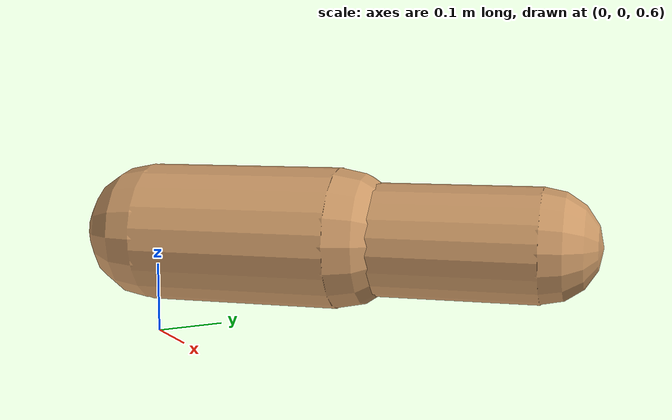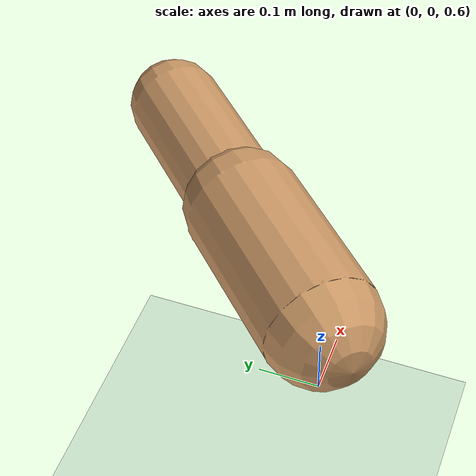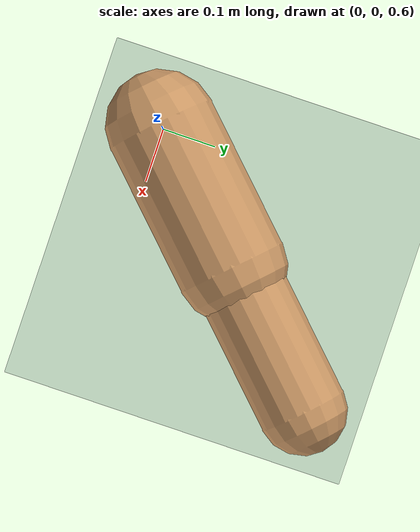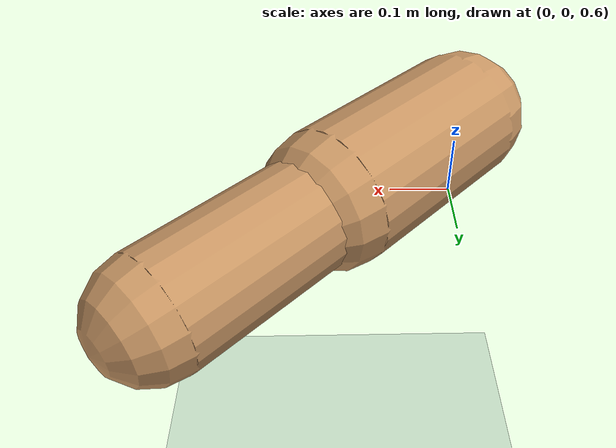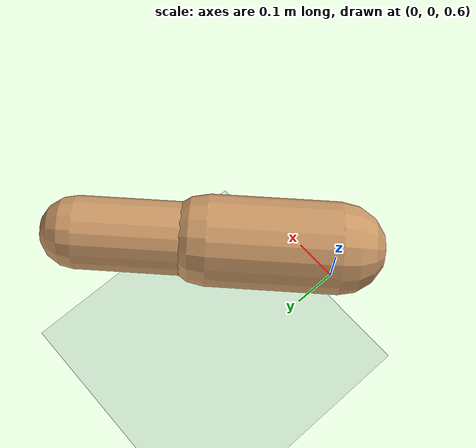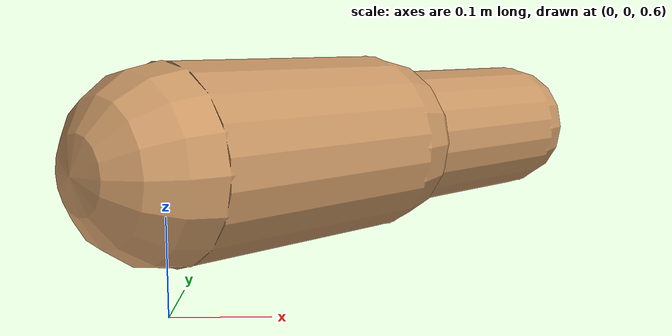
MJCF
<!--similar to Hopper env-->
<mujoco model="ant">
  <compiler angle="degree" coordinate="local" inertiafromgeom="true"/>
  <option integrator="RK4" timestep="0.01"/>
  <custom>
    <numeric data="0.0 0.0 0.55 1.0 0.0 0.0 0.0 0.0 1.0 0.0 -1.0 0.0 -1.0 0.0 1.0" name="init_qpos"/>
  </custom>
  <default>
    <joint armature="1" damping="1" limited="true"/>
    <geom conaffinity="1" condim="1" contype="1" margin="0.001" material="geom" rgba="0.8 0.6 .4 1" solimp=".8 .8 .01" solref=".02 1"/>
  </default>
  <asset>
    <texture builtin="gradient" height="100" rgb1="1 1 1" rgb2="0 0 0" type="skybox" width="100"/>
    <texture builtin="flat" height="1278" mark="cross" markrgb="1 1 1" name="texgeom" random="0.01" rgb1="0.8 0.6 0.4" rgb2="0.8 0.6 0.4" type="cube" width="127"/>
    <texture builtin="checker" height="100" name="texplane" rgb1="0 0 0" rgb2="0.8 0.8 0.8" type="2d" width="100"/>
    <material name="MatPlane" reflectance="0.5" shininess="1" specular="1" texrepeat="60 60" texture="texplane"/>
    <material name="geom" texture="texgeom" texuniform="true"/>
  </asset>
  <worldbody>
    <light cutoff="100" diffuse="1 1 1" dir="-0 0 -1.3" directional="true" exponent="1" pos="0 0 1.3" specular=".1 .1 .1"/>
    <geom conaffinity="1" condim="3" material="MatPlane" name="floor" pos="0 0 0" rgba="0.8 0.9 0.8 1" size="40 40 40" type="plane"/>
    <body name="0" pos="0 0 0.75">
      <camera name="track" mode="trackcom" pos="0 -3 0.3" xyaxes="1 0 0 0 0 1"/>
      <geom fromto="0.0 0.0 0.0 0.2 0.2 0.0" name="body_0_geom" size="0.1" type="capsule"/>
      <joint armature="0" damping="0" limited="false" margin="0.01" name="root" pos="0 0 0" type="free"/>
      <body name="1" pos="0.2 0.2 0">
        <geom fromto="0.0 0.0 0.0 0.2 0.2 0.0" name="body_1_geom" size="0.08" type="capsule"/>
        <joint axis="0 1 0" name="body_1" pos="0.0 0.0 0.0" limited="true" range="-100 100" type="hinge"/>
      </body>
    </body>
  </worldbody>
  <actuator>
    <motor ctrllimited="true" ctrlrange="-1.0 1.0" joint="body_1" gear="150"/>
  </actuator>
</mujoco>
